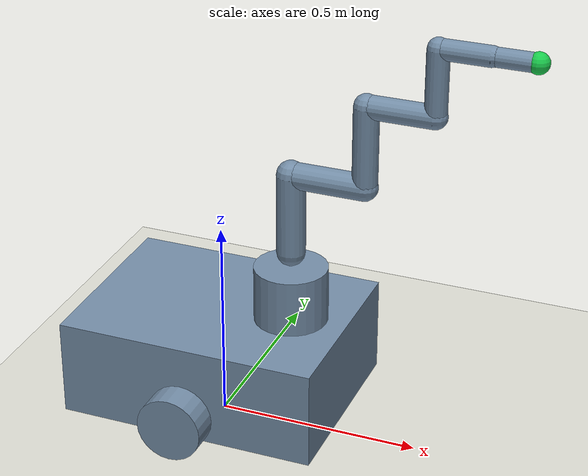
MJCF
<mujoco model="ddmoma_7dof">
  <compiler angle="radian" coordinate="local"/>
  <option timestep="0.001" gravity="0 0 -9.81" integrator="implicit"/>
  <default>
    <joint damping="1.0" armature="0.02"/>
    <geom rgba="0.45 0.55 0.65 1" friction="0.8 0.1 0.1" contype="0" conaffinity="0" density="500"/>
  </default>
  <asset>
    <material name="base_mat" rgba="0.16 0.25 0.30 1"/>
    <material name="arm_mat" rgba="0.80 0.48 0.18 1"/>
    <material name="wheel_mat" rgba="0.04 0.04 0.04 1"/>
  </asset>
  <worldbody>
    <geom name="floor" type="plane" size="6 6 0.05" rgba="0.86 0.86 0.82 1"/>
    <body name="mobile_base" pos="0 0 0.18">
      <joint name="base_x" type="slide" axis="1 0 0" damping="5.0" armature="0.1"/>
      <joint name="base_y" type="slide" axis="0 1 0" damping="5.0" armature="0.1"/>
      <joint name="base_yaw" type="hinge" axis="0 0 1" damping="2.0" armature="0.05"/>
      <geom name="base_collision" type="box" size="0.32 0.24 0.12" material="base_mat"/>
      <body name="left_wheel" pos="0 0.29 -0.05">
        <joint name="left_wheel_joint" type="hinge" axis="0 1 0"/>
        <geom type="cylinder" size="0.08 0.035" euler="1.5708 0 0" material="wheel_mat"/>
      </body>
      <body name="right_wheel" pos="0 -0.29 -0.05">
        <joint name="right_wheel_joint" type="hinge" axis="0 1 0"/>
        <geom type="cylinder" size="0.08 0.035" euler="1.5708 0 0" material="wheel_mat"/>
      </body>
      <body name="arm_mount" pos="0.18 0 0.18">
        <geom type="cylinder" size="0.09 0.08" material="base_mat"/>
        <body name="link_1" pos="0 0 0.12">
          <joint name="arm_joint_1" type="hinge" axis="0 0 1" range="-3.1416 3.1416"/>
          <geom type="capsule" fromto="0 0 0 0 0 0.20" size="0.035" material="arm_mat"/>
          <body name="link_2" pos="0 0 0.20">
            <joint name="arm_joint_2" type="hinge" axis="0 1 0" range="-2.8 2.8"/>
            <geom type="capsule" fromto="0 0 0 0.18 0 0" size="0.032" material="arm_mat"/>
            <body name="link_3" pos="0.18 0 0">
              <joint name="arm_joint_3" type="hinge" axis="0 1 0" range="-2.8 2.8"/>
              <geom type="capsule" fromto="0 0 0 0 0 0.20" size="0.030" material="arm_mat"/>
              <body name="link_4" pos="0 0 0.20">
                <joint name="arm_joint_4" type="hinge" axis="1 0 0" range="-3.1416 3.1416"/>
                <geom type="capsule" fromto="0 0 0 0.16 0 0" size="0.028" material="arm_mat"/>
                <body name="link_5" pos="0.16 0 0">
                  <joint name="arm_joint_5" type="hinge" axis="0 1 0" range="-2.8 2.8"/>
                  <geom type="capsule" fromto="0 0 0 0 0 0.16" size="0.026" material="arm_mat"/>
                  <body name="link_6" pos="0 0 0.16">
                    <joint name="arm_joint_6" type="hinge" axis="1 0 0" range="-3.1416 3.1416"/>
                    <geom type="capsule" fromto="0 0 0 0.12 0 0" size="0.024" material="arm_mat"/>
                    <body name="link_7" pos="0.12 0 0">
                      <joint name="arm_joint_7" type="hinge" axis="0 1 0" range="-3.1416 3.1416"/>
                      <geom type="capsule" fromto="0 0 0 0.10 0 0" size="0.022" material="arm_mat"/>
                      <site name="tool0" pos="0.10 0 0" size="0.025" rgba="0.1 0.8 0.3 1"/>
                    </body>
                  </body>
                </body>
              </body>
            </body>
          </body>
        </body>
      </body>
    </body>
  </worldbody>
  <actuator>
    <velocity name="left_wheel_velocity" joint="left_wheel_joint" kv="2"/>
    <velocity name="right_wheel_velocity" joint="right_wheel_joint" kv="2"/>
    <position name="arm_joint_1_position" joint="arm_joint_1" kp="30"/>
    <position name="arm_joint_2_position" joint="arm_joint_2" kp="30"/>
    <position name="arm_joint_3_position" joint="arm_joint_3" kp="30"/>
    <position name="arm_joint_4_position" joint="arm_joint_4" kp="30"/>
    <position name="arm_joint_5_position" joint="arm_joint_5" kp="30"/>
    <position name="arm_joint_6_position" joint="arm_joint_6" kp="30"/>
    <position name="arm_joint_7_position" joint="arm_joint_7" kp="30"/>
  </actuator>
</mujoco>
